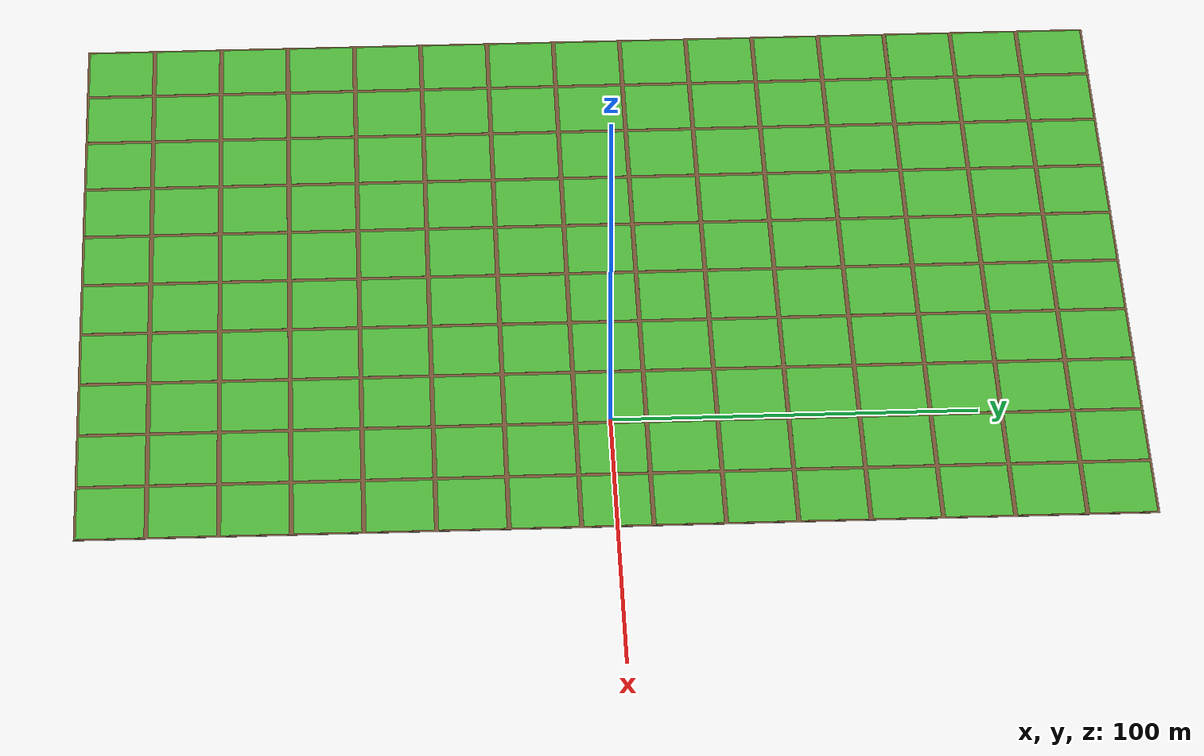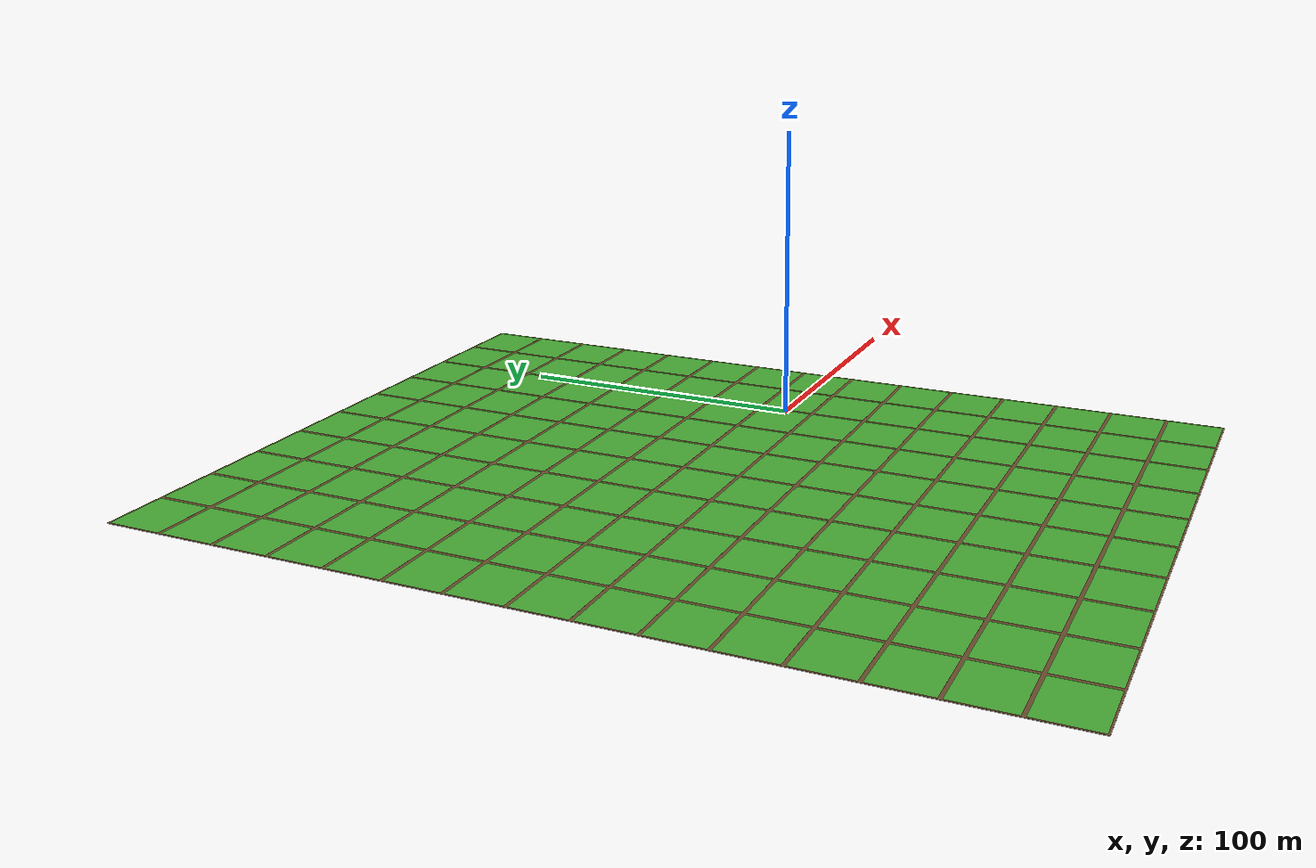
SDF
<sdf version="1.9">
 <world name="agricultural_field">
  <model name="sawah_kiri">
   <static>true</static>
   <pose>-65 0 0 0 0 0</pose>
   <link name="link">
    <visual name="soil_base">
     <geometry><box><size>220.00 290.00 0.10</size></box></geometry>
     <material><ambient>0.35 0.25 0.15 1</ambient><diffuse>0.45 0.32 0.20 1</diffuse></material>
    </visual>
    <visual name="plot_0">
     <pose>-99.00 -135.33 0.060 0 0 0</pose>
     <geometry><box><size>20.80 18.13 0.02</size></box></geometry>
     <material><ambient>0.20 0.50 0.15 1</ambient><diffuse>0.30 0.70 0.22 1</diffuse></material>
    </visual>
    <visual name="plot_1">
     <pose>-99.00 -116.00 0.060 0 0 0</pose>
     <geometry><box><size>20.80 18.13 0.02</size></box></geometry>
     <material><ambient>0.20 0.50 0.15 1</ambient><diffuse>0.30 0.70 0.22 1</diffuse></material>
    </visual>
    <visual name="plot_2">
     <pose>-99.00 -96.67 0.060 0 0 0</pose>
     <geometry><box><size>20.80 18.13 0.02</size></box></geometry>
     <material><ambient>0.20 0.50 0.15 1</ambient><diffuse>0.30 0.70 0.22 1</diffuse></material>
    </visual>
    <visual name="plot_3">
     <pose>-99.00 -77.33 0.060 0 0 0</pose>
     <geometry><box><size>20.80 18.13 0.02</size></box></geometry>
     <material><ambient>0.20 0.50 0.15 1</ambient><diffuse>0.30 0.70 0.22 1</diffuse></material>
    </visual>
    <visual name="plot_4">
     <pose>-99.00 -58.00 0.060 0 0 0</pose>
     <geometry><box><size>20.80 18.13 0.02</size></box></geometry>
     <material><ambient>0.20 0.50 0.15 1</ambient><diffuse>0.30 0.70 0.22 1</diffuse></material>
    </visual>
    <visual name="plot_5">
     <pose>-99.00 -38.67 0.060 0 0 0</pose>
     <geometry><box><size>20.80 18.13 0.02</size></box></geometry>
     <material><ambient>0.20 0.50 0.15 1</ambient><diffuse>0.30 0.70 0.22 1</diffuse></material>
    </visual>
    <visual name="plot_6">
     <pose>-99.00 -19.33 0.060 0 0 0</pose>
     <geometry><box><size>20.80 18.13 0.02</size></box></geometry>
     <material><ambient>0.20 0.50 0.15 1</ambient><diffuse>0.30 0.70 0.22 1</diffuse></material>
    </visual>
    <visual name="plot_7">
     <pose>-99.00 0.00 0.060 0 0 0</pose>
     <geometry><box><size>20.80 18.13 0.02</size></box></geometry>
     <material><ambient>0.20 0.50 0.15 1</ambient><diffuse>0.30 0.70 0.22 1</diffuse></material>
    </visual>
    <visual name="plot_8">
     <pose>-99.00 19.33 0.060 0 0 0</pose>
     <geometry><box><size>20.80 18.13 0.02</size></box></geometry>
     <material><ambient>0.20 0.50 0.15 1</ambient><diffuse>0.30 0.70 0.22 1</diffuse></material>
    </visual>
    <visual name="plot_9">
     <pose>-99.00 38.67 0.060 0 0 0</pose>
     <geometry><box><size>20.80 18.13 0.02</size></box></geometry>
     <material><ambient>0.20 0.50 0.15 1</ambient><diffuse>0.30 0.70 0.22 1</diffuse></material>
    </visual>
    <visual name="plot_10">
     <pose>-99.00 58.00 0.060 0 0 0</pose>
     <geometry><box><size>20.80 18.13 0.02</size></box></geometry>
     <material><ambient>0.20 0.50 0.15 1</ambient><diffuse>0.30 0.70 0.22 1</diffuse></material>
    </visual>
    <visual name="plot_11">
     <pose>-99.00 77.33 0.060 0 0 0</pose>
     <geometry><box><size>20.80 18.13 0.02</size></box></geometry>
     <material><ambient>0.20 0.50 0.15 1</ambient><diffuse>0.30 0.70 0.22 1</diffuse></material>
    </visual>
    <visual name="plot_12">
     <pose>-99.00 96.67 0.060 0 0 0</pose>
     <geometry><box><size>20.80 18.13 0.02</size></box></geometry>
     <material><ambient>0.20 0.50 0.15 1</ambient><diffuse>0.30 0.70 0.22 1</diffuse></material>
    </visual>
    <visual name="plot_13">
     <pose>-99.00 116.00 0.060 0 0 0</pose>
     <geometry><box><size>20.80 18.13 0.02</size></box></geometry>
     <material><ambient>0.20 0.50 0.15 1</ambient><diffuse>0.30 0.70 0.22 1</diffuse></material>
    </visual>
    <visual name="plot_14">
     <pose>-99.00 135.33 0.060 0 0 0</pose>
     <geometry><box><size>20.80 18.13 0.02</size></box></geometry>
     <material><ambient>0.20 0.50 0.15 1</ambient><diffuse>0.30 0.70 0.22 1</diffuse></material>
    </visual>
    <visual name="plot_15">
     <pose>-77.00 -135.33 0.060 0 0 0</pose>
     <geometry><box><size>20.80 18.13 0.02</size></box></geometry>
     <material><ambient>0.20 0.50 0.15 1</ambient><diffuse>0.30 0.70 0.22 1</diffuse></material>
    </visual>
    <visual name="plot_16">
     <pose>-77.00 -116.00 0.060 0 0 0</pose>
     <geometry><box><size>20.80 18.13 0.02</size></box></geometry>
     <material><ambient>0.20 0.50 0.15 1</ambient><diffuse>0.30 0.70 0.22 1</diffuse></material>
    </visual>
    <visual name="plot_17">
     <pose>-77.00 -96.67 0.060 0 0 0</pose>
     <geometry><box><size>20.80 18.13 0.02</size></box></geometry>
     <material><ambient>0.20 0.50 0.15 1</ambient><diffuse>0.30 0.70 0.22 1</diffuse></material>
    </visual>
    <visual name="plot_18">
     <pose>-77.00 -77.33 0.060 0 0 0</pose>
     <geometry><box><size>20.80 18.13 0.02</size></box></geometry>
     <material><ambient>0.20 0.50 0.15 1</ambient><diffuse>0.30 0.70 0.22 1</diffuse></material>
    </visual>
    <visual name="plot_19">
     <pose>-77.00 -58.00 0.060 0 0 0</pose>
     <geometry><box><size>20.80 18.13 0.02</size></box></geometry>
     <material><ambient>0.20 0.50 0.15 1</ambient><diffuse>0.30 0.70 0.22 1</diffuse></material>
    </visual>
    <visual name="plot_20">
     <pose>-77.00 -38.67 0.060 0 0 0</pose>
     <geometry><box><size>20.80 18.13 0.02</size></box></geometry>
     <material><ambient>0.20 0.50 0.15 1</ambient><diffuse>0.30 0.70 0.22 1</diffuse></material>
    </visual>
    <visual name="plot_21">
     <pose>-77.00 -19.33 0.060 0 0 0</pose>
     <geometry><box><size>20.80 18.13 0.02</size></box></geometry>
     <material><ambient>0.20 0.50 0.15 1</ambient><diffuse>0.30 0.70 0.22 1</diffuse></material>
    </visual>
    <visual name="plot_22">
     <pose>-77.00 0.00 0.060 0 0 0</pose>
     <geometry><box><size>20.80 18.13 0.02</size></box></geometry>
     <material><ambient>0.20 0.50 0.15 1</ambient><diffuse>0.30 0.70 0.22 1</diffuse></material>
    </visual>
    <visual name="plot_23">
     <pose>-77.00 19.33 0.060 0 0 0</pose>
     <geometry><box><size>20.80 18.13 0.02</size></box></geometry>
     <material><ambient>0.20 0.50 0.15 1</ambient><diffuse>0.30 0.70 0.22 1</diffuse></material>
    </visual>
    <visual name="plot_24">
     <pose>-77.00 38.67 0.060 0 0 0</pose>
     <geometry><box><size>20.80 18.13 0.02</size></box></geometry>
     <material><ambient>0.20 0.50 0.15 1</ambient><diffuse>0.30 0.70 0.22 1</diffuse></material>
    </visual>
    <visual name="plot_25">
     <pose>-77.00 58.00 0.060 0 0 0</pose>
     <geometry><box><size>20.80 18.13 0.02</size></box></geometry>
     <material><ambient>0.20 0.50 0.15 1</ambient><diffuse>0.30 0.70 0.22 1</diffuse></material>
    </visual>
    <visual name="plot_26">
     <pose>-77.00 77.33 0.060 0 0 0</pose>
     <geometry><box><size>20.80 18.13 0.02</size></box></geometry>
     <material><ambient>0.20 0.50 0.15 1</ambient><diffuse>0.30 0.70 0.22 1</diffuse></material>
    </visual>
    <visual name="plot_27">
     <pose>-77.00 96.67 0.060 0 0 0</pose>
     <geometry><box><size>20.80 18.13 0.02</size></box></geometry>
     <material><ambient>0.20 0.50 0.15 1</ambient><diffuse>0.30 0.70 0.22 1</diffuse></material>
    </visual>
    <visual name="plot_28">
     <pose>-77.00 116.00 0.060 0 0 0</pose>
     <geometry><box><size>20.80 18.13 0.02</size></box></geometry>
     <material><ambient>0.20 0.50 0.15 1</ambient><diffuse>0.30 0.70 0.22 1</diffuse></material>
    </visual>
    <visual name="plot_29">
     <pose>-77.00 135.33 0.060 0 0 0</pose>
     <geometry><box><size>20.80 18.13 0.02</size></box></geometry>
     <material><ambient>0.20 0.50 0.15 1</ambient><diffuse>0.30 0.70 0.22 1</diffuse></material>
    </visual>
    <visual name="plot_30">
     <pose>-55.00 -135.33 0.060 0 0 0</pose>
     <geometry><box><size>20.80 18.13 0.02</size></box></geometry>
     <material><ambient>0.20 0.50 0.15 1</ambient><diffuse>0.30 0.70 0.22 1</diffuse></material>
    </visual>
    <visual name="plot_31">
     <pose>-55.00 -116.00 0.060 0 0 0</pose>
     <geometry><box><size>20.80 18.13 0.02</size></box></geometry>
     <material><ambient>0.20 0.50 0.15 1</ambient><diffuse>0.30 0.70 0.22 1</diffuse></material>
    </visual>
    <visual name="plot_32">
     <pose>-55.00 -96.67 0.060 0 0 0</pose>
     <geometry><box><size>20.80 18.13 0.02</size></box></geometry>
     <material><ambient>0.20 0.50 0.15 1</ambient><diffuse>0.30 0.70 0.22 1</diffuse></material>
    </visual>
    <visual name="plot_33">
     <pose>-55.00 -77.33 0.060 0 0 0</pose>
     <geometry><box><size>20.80 18.13 0.02</size></box></geometry>
     <material><ambient>0.20 0.50 0.15 1</ambient><diffuse>0.30 0.70 0.22 1</diffuse></material>
    </visual>
    <visual name="plot_34">
     <pose>-55.00 -58.00 0.060 0 0 0</pose>
     <geometry><box><size>20.80 18.13 0.02</size></box></geometry>
     <material><ambient>0.20 0.50 0.15 1</ambient><diffuse>0.30 0.70 0.22 1</diffuse></material>
    </visual>
    <visual name="plot_35">
     <pose>-55.00 -38.67 0.060 0 0 0</pose>
     <geometry><box><size>20.80 18.13 0.02</size></box></geometry>
     <material><ambient>0.20 0.50 0.15 1</ambient><diffuse>0.30 0.70 0.22 1</diffuse></material>
    </visual>
    <visual name="plot_36">
     <pose>-55.00 -19.33 0.060 0 0 0</pose>
     <geometry><box><size>20.80 18.13 0.02</size></box></geometry>
     <material><ambient>0.20 0.50 0.15 1</ambient><diffuse>0.30 0.70 0.22 1</diffuse></material>
    </visual>
    <visual name="plot_37">
     <pose>-55.00 0.00 0.060 0 0 0</pose>
     <geometry><box><size>20.80 18.13 0.02</size></box></geometry>
     <material><ambient>0.20 0.50 0.15 1</ambient><diffuse>0.30 0.70 0.22 1</diffuse></material>
    </visual>
    <visual name="plot_38">
     <pose>-55.00 19.33 0.060 0 0 0</pose>
     <geometry><box><size>20.80 18.13 0.02</size></box></geometry>
     <material><ambient>0.20 0.50 0.15 1</ambient><diffuse>0.30 0.70 0.22 1</diffuse></material>
    </visual>
    <visual name="plot_39">
     <pose>-55.00 38.67 0.060 0 0 0</pose>
     <geometry><box><size>20.80 18.13 0.02</size></box></geometry>
     <material><ambient>0.20 0.50 0.15 1</ambient><diffuse>0.30 0.70 0.22 1</diffuse></material>
    </visual>
    <visual name="plot_40">
     <pose>-55.00 58.00 0.060 0 0 0</pose>
     <geometry><box><size>20.80 18.13 0.02</size></box></geometry>
     <material><ambient>0.20 0.50 0.15 1</ambient><diffuse>0.30 0.70 0.22 1</diffuse></material>
    </visual>
    <visual name="plot_41">
     <pose>-55.00 77.33 0.060 0 0 0</pose>
     <geometry><box><size>20.80 18.13 0.02</size></box></geometry>
     <material><ambient>0.20 0.50 0.15 1</ambient><diffuse>0.30 0.70 0.22 1</diffuse></material>
    </visual>
    <visual name="plot_42">
     <pose>-55.00 96.67 0.060 0 0 0</pose>
     <geometry><box><size>20.80 18.13 0.02</size></box></geometry>
     <material><ambient>0.20 0.50 0.15 1</ambient><diffuse>0.30 0.70 0.22 1</diffuse></material>
    </visual>
    <visual name="plot_43">
     <pose>-55.00 116.00 0.060 0 0 0</pose>
     <geometry><box><size>20.80 18.13 0.02</size></box></geometry>
     <material><ambient>0.20 0.50 0.15 1</ambient><diffuse>0.30 0.70 0.22 1</diffuse></material>
    </visual>
    <visual name="plot_44">
     <pose>-55.00 135.33 0.060 0 0 0</pose>
     <geometry><box><size>20.80 18.13 0.02</size></box></geometry>
     <material><ambient>0.20 0.50 0.15 1</ambient><diffuse>0.30 0.70 0.22 1</diffuse></material>
    </visual>
    <visual name="plot_45">
     <pose>-33.00 -135.33 0.060 0 0 0</pose>
     <geometry><box><size>20.80 18.13 0.02</size></box></geometry>
     <material><ambient>0.20 0.50 0.15 1</ambient><diffuse>0.30 0.70 0.22 1</diffuse></material>
    </visual>
    <visual name="plot_46">
     <pose>-33.00 -116.00 0.060 0 0 0</pose>
     <geometry><box><size>20.80 18.13 0.02</size></box></geometry>
     <material><ambient>0.20 0.50 0.15 1</ambient><diffuse>0.30 0.70 0.22 1</diffuse></material>
    </visual>
    <visual name="plot_47">
     <pose>-33.00 -96.67 0.060 0 0 0</pose>
     <geometry><box><size>20.80 18.13 0.02</size></box></geometry>
     <material><ambient>0.20 0.50 0.15 1</ambient><diffuse>0.30 0.70 0.22 1</diffuse></material>
    </visual>
    <visual name="plot_48">
     <pose>-33.00 -77.33 0.060 0 0 0</pose>
     <geometry><box><size>20.80 18.13 0.02</size></box></geometry>
     <material><ambient>0.20 0.50 0.15 1</ambient><diffuse>0.30 0.70 0.22 1</diffuse></material>
    </visual>
    <visual name="plot_49">
     <pose>-33.00 -58.00 0.060 0 0 0</pose>
     <geometry><box><size>20.80 18.13 0.02</size></box></geometry>
     <material><ambient>0.20 0.50 0.15 1</ambient><diffuse>0.30 0.70 0.22 1</diffuse></material>
    </visual>
    <visual name="plot_50">
     <pose>-33.00 -38.67 0.060 0 0 0</pose>
     <geometry><box><size>20.80 18.13 0.02</size></box></geometry>
     <material><ambient>0.20 0.50 0.15 1</ambient><diffuse>0.30 0.70 0.22 1</diffuse></material>
    </visual>
    <visual name="plot_51">
     <pose>-33.00 -19.33 0.060 0 0 0</pose>
     <geometry><box><size>20.80 18.13 0.02</size></box></geometry>
     <material><ambient>0.20 0.50 0.15 1</ambient><diffuse>0.30 0.70 0.22 1</diffuse></material>
    </visual>
    <visual name="plot_52">
     <pose>-33.00 0.00 0.060 0 0 0</pose>
     <geometry><box><size>20.80 18.13 0.02</size></box></geometry>
     <material><ambient>0.20 0.50 0.15 1</ambient><diffuse>0.30 0.70 0.22 1</diffuse></material>
    </visual>
    <visual name="plot_53">
     <pose>-33.00 19.33 0.060 0 0 0</pose>
     <geometry><box><size>20.80 18.13 0.02</size></box></geometry>
     <material><ambient>0.20 0.50 0.15 1</ambient><diffuse>0.30 0.70 0.22 1</diffuse></material>
    </visual>
    <visual name="plot_54">
     <pose>-33.00 38.67 0.060 0 0 0</pose>
     <geometry><box><size>20.80 18.13 0.02</size></box></geometry>
     <material><ambient>0.20 0.50 0.15 1</ambient><diffuse>0.30 0.70 0.22 1</diffuse></material>
    </visual>
    <visual name="plot_55">
     <pose>-33.00 58.00 0.060 0 0 0</pose>
     <geometry><box><size>20.80 18.13 0.02</size></box></geometry>
     <material><ambient>0.20 0.50 0.15 1</ambient><diffuse>0.30 0.70 0.22 1</diffuse></material>
    </visual>
    <visual name="plot_56">
     <pose>-33.00 77.33 0.060 0 0 0</pose>
     <geometry><box><size>20.80 18.13 0.02</size></box></geometry>
     <material><ambient>0.20 0.50 0.15 1</ambient><diffuse>0.30 0.70 0.22 1</diffuse></material>
    </visual>
    <visual name="plot_57">
     <pose>-33.00 96.67 0.060 0 0 0</pose>
     <geometry><box><size>20.80 18.13 0.02</size></box></geometry>
     <material><ambient>0.20 0.50 0.15 1</ambient><diffuse>0.30 0.70 0.22 1</diffuse></material>
    </visual>
    <visual name="plot_58">
     <pose>-33.00 116.00 0.060 0 0 0</pose>
     <geometry><box><size>20.80 18.13 0.02</size></box></geometry>
     <material><ambient>0.20 0.50 0.15 1</ambient><diffuse>0.30 0.70 0.22 1</diffuse></material>
    </visual>
    <visual name="plot_59">
     <pose>-33.00 135.33 0.060 0 0 0</pose>
     <geometry><box><size>20.80 18.13 0.02</size></box></geometry>
     <material><ambient>0.20 0.50 0.15 1</ambient><diffuse>0.30 0.70 0.22 1</diffuse></material>
    </visual>
    <visual name="plot_60">
     <pose>-11.00 -135.33 0.060 0 0 0</pose>
     <geometry><box><size>20.80 18.13 0.02</size></box></geometry>
     <material><ambient>0.20 0.50 0.15 1</ambient><diffuse>0.30 0.70 0.22 1</diffuse></material>
    </visual>
    <visual name="plot_61">
     <pose>-11.00 -116.00 0.060 0 0 0</pose>
     <geometry><box><size>20.80 18.13 0.02</size></box></geometry>
     <material><ambient>0.20 0.50 0.15 1</ambient><diffuse>0.30 0.70 0.22 1</diffuse></material>
    </visual>
    <visual name="plot_62">
     <pose>-11.00 -96.67 0.060 0 0 0</pose>
     <geometry><box><size>20.80 18.13 0.02</size></box></geometry>
     <material><ambient>0.20 0.50 0.15 1</ambient><diffuse>0.30 0.70 0.22 1</diffuse></material>
    </visual>
    <visual name="plot_63">
     <pose>-11.00 -77.33 0.060 0 0 0</pose>
     <geometry><box><size>20.80 18.13 0.02</size></box></geometry>
     <material><ambient>0.20 0.50 0.15 1</ambient><diffuse>0.30 0.70 0.22 1</diffuse></material>
    </visual>
    <visual name="plot_64">
     <pose>-11.00 -58.00 0.060 0 0 0</pose>
     <geometry><box><size>20.80 18.13 0.02</size></box></geometry>
     <material><ambient>0.20 0.50 0.15 1</ambient><diffuse>0.30 0.70 0.22 1</diffuse></material>
    </visual>
    <visual name="plot_65">
     <pose>-11.00 -38.67 0.060 0 0 0</pose>
     <geometry><box><size>20.80 18.13 0.02</size></box></geometry>
     <material><ambient>0.20 0.50 0.15 1</ambient><diffuse>0.30 0.70 0.22 1</diffuse></material>
    </visual>
    <visual name="plot_66">
     <pose>-11.00 -19.33 0.060 0 0 0</pose>
     <geometry><box><size>20.80 18.13 0.02</size></box></geometry>
     <material><ambient>0.20 0.50 0.15 1</ambient><diffuse>0.30 0.70 0.22 1</diffuse></material>
    </visual>
    <visual name="plot_67">
     <pose>-11.00 0.00 0.060 0 0 0</pose>
     <geometry><box><size>20.80 18.13 0.02</size></box></geometry>
     <material><ambient>0.20 0.50 0.15 1</ambient><diffuse>0.30 0.70 0.22 1</diffuse></material>
    </visual>
    <visual name="plot_68">
     <pose>-11.00 19.33 0.060 0 0 0</pose>
     <geometry><box><size>20.80 18.13 0.02</size></box></geometry>
     <material><ambient>0.20 0.50 0.15 1</ambient><diffuse>0.30 0.70 0.22 1</diffuse></material>
    </visual>
    <visual name="plot_69">
     <pose>-11.00 38.67 0.060 0 0 0</pose>
     <geometry><box><size>20.80 18.13 0.02</size></box></geometry>
     <material><ambient>0.20 0.50 0.15 1</ambient><diffuse>0.30 0.70 0.22 1</diffuse></material>
    </visual>
    <visual name="plot_70">
     <pose>-11.00 58.00 0.060 0 0 0</pose>
     <geometry><box><size>20.80 18.13 0.02</size></box></geometry>
     <material><ambient>0.20 0.50 0.15 1</ambient><diffuse>0.30 0.70 0.22 1</diffuse></material>
    </visual>
    <visual name="plot_71">
     <pose>-11.00 77.33 0.060 0 0 0</pose>
     <geometry><box><size>20.80 18.13 0.02</size></box></geometry>
     <material><ambient>0.20 0.50 0.15 1</ambient><diffuse>0.30 0.70 0.22 1</diffuse></material>
    </visual>
    <visual name="plot_72">
     <pose>-11.00 96.67 0.060 0 0 0</pose>
     <geometry><box><size>20.80 18.13 0.02</size></box></geometry>
     <material><ambient>0.20 0.50 0.15 1</ambient><diffuse>0.30 0.70 0.22 1</diffuse></material>
    </visual>
    <visual name="plot_73">
     <pose>-11.00 116.00 0.060 0 0 0</pose>
     <geometry><box><size>20.80 18.13 0.02</size></box></geometry>
     <material><ambient>0.20 0.50 0.15 1</ambient><diffuse>0.30 0.70 0.22 1</diffuse></material>
    </visual>
    <visual name="plot_74">
     <pose>-11.00 135.33 0.060 0 0 0</pose>
     <geometry><box><size>20.80 18.13 0.02</size></box></geometry>
     <material><ambient>0.20 0.50 0.15 1</ambient><diffuse>0.30 0.70 0.22 1</diffuse></material>
    </visual>
    <visual name="plot_75">
     <pose>11.00 -135.33 0.060 0 0 0</pose>
     <geometry><box><size>20.80 18.13 0.02</size></box></geometry>
     <material><ambient>0.20 0.50 0.15 1</ambient><diffuse>0.30 0.70 0.22 1</diffuse></material>
    </visual>
    <visual name="plot_76">
     <pose>11.00 -116.00 0.060 0 0 0</pose>
     <geometry><box><size>20.80 18.13 0.02</size></box></geometry>
     <material><ambient>0.20 0.50 0.15 1</ambient><diffuse>0.30 0.70 0.22 1</diffuse></material>
    </visual>
    <visual name="plot_77">
     <pose>11.00 -96.67 0.060 0 0 0</pose>
     <geometry><box><size>20.80 18.13 0.02</size></box></geometry>
     <material><ambient>0.20 0.50 0.15 1</ambient><diffuse>0.30 0.70 0.22 1</diffuse></material>
    </visual>
    <visual name="plot_78">
     <pose>11.00 -77.33 0.060 0 0 0</pose>
     <geometry><box><size>20.80 18.13 0.02</size></box></geometry>
     <material><ambient>0.20 0.50 0.15 1</ambient><diffuse>0.30 0.70 0.22 1</diffuse></material>
    </visual>
    <visual name="plot_79">
     <pose>11.00 -58.00 0.060 0 0 0</pose>
     <geometry><box><size>20.80 18.13 0.02</size></box></geometry>
     <material><ambient>0.20 0.50 0.15 1</ambient><diffuse>0.30 0.70 0.22 1</diffuse></material>
    </visual>
    <visual name="plot_80">
     <pose>11.00 -38.67 0.060 0 0 0</pose>
     <geometry><box><size>20.80 18.13 0.02</size></box></geometry>
     <material><ambient>0.20 0.50 0.15 1</ambient><diffuse>0.30 0.70 0.22 1</diffuse></material>
    </visual>
    <visual name="plot_81">
     <pose>11.00 -19.33 0.060 0 0 0</pose>
     <geometry><box><size>20.80 18.13 0.02</size></box></geometry>
     <material><ambient>0.20 0.50 0.15 1</ambient><diffuse>0.30 0.70 0.22 1</diffuse></material>
    </visual>
    <visual name="plot_82">
     <pose>11.00 0.00 0.060 0 0 0</pose>
     <geometry><box><size>20.80 18.13 0.02</size></box></geometry>
     <material><ambient>0.20 0.50 0.15 1</ambient><diffuse>0.30 0.70 0.22 1</diffuse></material>
    </visual>
    <visual name="plot_83">
     <pose>11.00 19.33 0.060 0 0 0</pose>
     <geometry><box><size>20.80 18.13 0.02</size></box></geometry>
     <material><ambient>0.20 0.50 0.15 1</ambient><diffuse>0.30 0.70 0.22 1</diffuse></material>
    </visual>
    <visual name="plot_84">
     <pose>11.00 38.67 0.060 0 0 0</pose>
     <geometry><box><size>20.80 18.13 0.02</size></box></geometry>
     <material><ambient>0.20 0.50 0.15 1</ambient><diffuse>0.30 0.70 0.22 1</diffuse></material>
    </visual>
    <visual name="plot_85">
     <pose>11.00 58.00 0.060 0 0 0</pose>
     <geometry><box><size>20.80 18.13 0.02</size></box></geometry>
     <material><ambient>0.20 0.50 0.15 1</ambient><diffuse>0.30 0.70 0.22 1</diffuse></material>
    </visual>
    <visual name="plot_86">
     <pose>11.00 77.33 0.060 0 0 0</pose>
     <geometry><box><size>20.80 18.13 0.02</size></box></geometry>
     <material><ambient>0.20 0.50 0.15 1</ambient><diffuse>0.30 0.70 0.22 1</diffuse></material>
    </visual>
    <visual name="plot_87">
     <pose>11.00 96.67 0.060 0 0 0</pose>
     <geometry><box><size>20.80 18.13 0.02</size></box></geometry>
     <material><ambient>0.20 0.50 0.15 1</ambient><diffuse>0.30 0.70 0.22 1</diffuse></material>
    </visual>
    <visual name="plot_88">
     <pose>11.00 116.00 0.060 0 0 0</pose>
     <geometry><box><size>20.80 18.13 0.02</size></box></geometry>
     <material><ambient>0.20 0.50 0.15 1</ambient><diffuse>0.30 0.70 0.22 1</diffuse></material>
    </visual>
    <visual name="plot_89">
     <pose>11.00 135.33 0.060 0 0 0</pose>
     <geometry><box><size>20.80 18.13 0.02</size></box></geometry>
     <material><ambient>0.20 0.50 0.15 1</ambient><diffuse>0.30 0.70 0.22 1</diffuse></material>
    </visual>
    <visual name="plot_90">
     <pose>33.00 -135.33 0.060 0 0 0</pose>
     <geometry><box><size>20.80 18.13 0.02</size></box></geometry>
     <material><ambient>0.20 0.50 0.15 1</ambient><diffuse>0.30 0.70 0.22 1</diffuse></material>
    </visual>
    <visual name="plot_91">
     <pose>33.00 -116.00 0.060 0 0 0</pose>
     <geometry><box><size>20.80 18.13 0.02</size></box></geometry>
     <material><ambient>0.20 0.50 0.15 1</ambient><diffuse>0.30 0.70 0.22 1</diffuse></material>
    </visual>
    <visual name="plot_92">
     <pose>33.00 -96.67 0.060 0 0 0</pose>
     <geometry><box><size>20.80 18.13 0.02</size></box></geometry>
     <material><ambient>0.20 0.50 0.15 1</ambient><diffuse>0.30 0.70 0.22 1</diffuse></material>
    </visual>
    <visual name="plot_93">
     <pose>33.00 -77.33 0.060 0 0 0</pose>
     <geometry><box><size>20.80 18.13 0.02</size></box></geometry>
     <material><ambient>0.20 0.50 0.15 1</ambient><diffuse>0.30 0.70 0.22 1</diffuse></material>
    </visual>
    <visual name="plot_94">
     <pose>33.00 -58.00 0.060 0 0 0</pose>
     <geometry><box><size>20.80 18.13 0.02</size></box></geometry>
     <material><ambient>0.20 0.50 0.15 1</ambient><diffuse>0.30 0.70 0.22 1</diffuse></material>
    </visual>
    <visual name="plot_95">
     <pose>33.00 -38.67 0.060 0 0 0</pose>
     <geometry><box><size>20.80 18.13 0.02</size></box></geometry>
     <material><ambient>0.20 0.50 0.15 1</ambient><diffuse>0.30 0.70 0.22 1</diffuse></material>
    </visual>
    <visual name="plot_96">
     <pose>33.00 -19.33 0.060 0 0 0</pose>
     <geometry><box><size>20.80 18.13 0.02</size></box></geometry>
     <material><ambient>0.20 0.50 0.15 1</ambient><diffuse>0.30 0.70 0.22 1</diffuse></material>
    </visual>
    <visual name="plot_97">
     <pose>33.00 0.00 0.060 0 0 0</pose>
     <geometry><box><size>20.80 18.13 0.02</size></box></geometry>
     <material><ambient>0.20 0.50 0.15 1</ambient><diffuse>0.30 0.70 0.22 1</diffuse></material>
    </visual>
    <visual name="plot_98">
     <pose>33.00 19.33 0.060 0 0 0</pose>
     <geometry><box><size>20.80 18.13 0.02</size></box></geometry>
     <material><ambient>0.20 0.50 0.15 1</ambient><diffuse>0.30 0.70 0.22 1</diffuse></material>
    </visual>
    <visual name="plot_99">
     <pose>33.00 38.67 0.060 0 0 0</pose>
     <geometry><box><size>20.80 18.13 0.02</size></box></geometry>
     <material><ambient>0.20 0.50 0.15 1</ambient><diffuse>0.30 0.70 0.22 1</diffuse></material>
    </visual>
    <visual name="plot_100">
     <pose>33.00 58.00 0.060 0 0 0</pose>
     <geometry><box><size>20.80 18.13 0.02</size></box></geometry>
     <material><ambient>0.20 0.50 0.15 1</ambient><diffuse>0.30 0.70 0.22 1</diffuse></material>
    </visual>
    <visual name="plot_101">
     <pose>33.00 77.33 0.060 0 0 0</pose>
     <geometry><box><size>20.80 18.13 0.02</size></box></geometry>
     <material><ambient>0.20 0.50 0.15 1</ambient><diffuse>0.30 0.70 0.22 1</diffuse></material>
    </visual>
    <visual name="plot_102">
     <pose>33.00 96.67 0.060 0 0 0</pose>
     <geometry><box><size>20.80 18.13 0.02</size></box></geometry>
     <material><ambient>0.20 0.50 0.15 1</ambient><diffuse>0.30 0.70 0.22 1</diffuse></material>
    </visual>
    <visual name="plot_103">
     <pose>33.00 116.00 0.060 0 0 0</pose>
     <geometry><box><size>20.80 18.13 0.02</size></box></geometry>
     <material><ambient>0.20 0.50 0.15 1</ambient><diffuse>0.30 0.70 0.22 1</diffuse></material>
    </visual>
    <visual name="plot_104">
     <pose>33.00 135.33 0.060 0 0 0</pose>
     <geometry><box><size>20.80 18.13 0.02</size></box></geometry>
     <material><ambient>0.20 0.50 0.15 1</ambient><diffuse>0.30 0.70 0.22 1</diffuse></material>
    </visual>
    <visual name="plot_105">
     <pose>55.00 -135.33 0.060 0 0 0</pose>
     <geometry><box><size>20.80 18.13 0.02</size></box></geometry>
     <material><ambient>0.20 0.50 0.15 1</ambient><diffuse>0.30 0.70 0.22 1</diffuse></material>
    </visual>
    <visual name="plot_106">
     <pose>55.00 -116.00 0.060 0 0 0</pose>
     <geometry><box><size>20.80 18.13 0.02</size></box></geometry>
     <material><ambient>0.20 0.50 0.15 1</ambient><diffuse>0.30 0.70 0.22 1</diffuse></material>
    </visual>
    <visual name="plot_107">
     <pose>55.00 -96.67 0.060 0 0 0</pose>
     <geometry><box><size>20.80 18.13 0.02</size></box></geometry>
     <material><ambient>0.20 0.50 0.15 1</ambient><diffuse>0.30 0.70 0.22 1</diffuse></material>
    </visual>
    <visual name="plot_108">
     <pose>55.00 -77.33 0.060 0 0 0</pose>
     <geometry><box><size>20.80 18.13 0.02</size></box></geometry>
     <material><ambient>0.20 0.50 0.15 1</ambient><diffuse>0.30 0.70 0.22 1</diffuse></material>
    </visual>
    <visual name="plot_109">
     <pose>55.00 -58.00 0.060 0 0 0</pose>
     <geometry><box><size>20.80 18.13 0.02</size></box></geometry>
     <material><ambient>0.20 0.50 0.15 1</ambient><diffuse>0.30 0.70 0.22 1</diffuse></material>
    </visual>
    <visual name="plot_110">
     <pose>55.00 -38.67 0.060 0 0 0</pose>
     <geometry><box><size>20.80 18.13 0.02</size></box></geometry>
     <material><ambient>0.20 0.50 0.15 1</ambient><diffuse>0.30 0.70 0.22 1</diffuse></material>
    </visual>
    <visual name="plot_111">
     <pose>55.00 -19.33 0.060 0 0 0</pose>
     <geometry><box><size>20.80 18.13 0.02</size></box></geometry>
     <material><ambient>0.20 0.50 0.15 1</ambient><diffuse>0.30 0.70 0.22 1</diffuse></material>
    </visual>
    <visual name="plot_112">
     <pose>55.00 0.00 0.060 0 0 0</pose>
     <geometry><box><size>20.80 18.13 0.02</size></box></geometry>
     <material><ambient>0.20 0.50 0.15 1</ambient><diffuse>0.30 0.70 0.22 1</diffuse></material>
    </visual>
    <visual name="plot_113">
     <pose>55.00 19.33 0.060 0 0 0</pose>
     <geometry><box><size>20.80 18.13 0.02</size></box></geometry>
     <material><ambient>0.20 0.50 0.15 1</ambient><diffuse>0.30 0.70 0.22 1</diffuse></material>
    </visual>
    <visual name="plot_114">
     <pose>55.00 38.67 0.060 0 0 0</pose>
     <geometry><box><size>20.80 18.13 0.02</size></box></geometry>
     <material><ambient>0.20 0.50 0.15 1</ambient><diffuse>0.30 0.70 0.22 1</diffuse></material>
    </visual>
    <visual name="plot_115">
     <pose>55.00 58.00 0.060 0 0 0</pose>
     <geometry><box><size>20.80 18.13 0.02</size></box></geometry>
     <material><ambient>0.20 0.50 0.15 1</ambient><diffuse>0.30 0.70 0.22 1</diffuse></material>
    </visual>
    <visual name="plot_116">
     <pose>55.00 77.33 0.060 0 0 0</pose>
     <geometry><box><size>20.80 18.13 0.02</size></box></geometry>
     <material><ambient>0.20 0.50 0.15 1</ambient><diffuse>0.30 0.70 0.22 1</diffuse></material>
    </visual>
    <visual name="plot_117">
     <pose>55.00 96.67 0.060 0 0 0</pose>
     <geometry><box><size>20.80 18.13 0.02</size></box></geometry>
     <material><ambient>0.20 0.50 0.15 1</ambient><diffuse>0.30 0.70 0.22 1</diffuse></material>
    </visual>
    <visual name="plot_118">
     <pose>55.00 116.00 0.060 0 0 0</pose>
     <geometry><box><size>20.80 18.13 0.02</size></box></geometry>
     <material><ambient>0.20 0.50 0.15 1</ambient><diffuse>0.30 0.70 0.22 1</diffuse></material>
    </visual>
    <visual name="plot_119">
     <pose>55.00 135.33 0.060 0 0 0</pose>
     <geometry><box><size>20.80 18.13 0.02</size></box></geometry>
     <material><ambient>0.20 0.50 0.15 1</ambient><diffuse>0.30 0.70 0.22 1</diffuse></material>
    </visual>
    <visual name="plot_120">
     <pose>77.00 -135.33 0.060 0 0 0</pose>
     <geometry><box><size>20.80 18.13 0.02</size></box></geometry>
     <material><ambient>0.20 0.50 0.15 1</ambient><diffuse>0.30 0.70 0.22 1</diffuse></material>
    </visual>
    <visual name="plot_121">
     <pose>77.00 -116.00 0.060 0 0 0</pose>
     <geometry><box><size>20.80 18.13 0.02</size></box></geometry>
     <material><ambient>0.20 0.50 0.15 1</ambient><diffuse>0.30 0.70 0.22 1</diffuse></material>
    </visual>
    <visual name="plot_122">
     <pose>77.00 -96.67 0.060 0 0 0</pose>
     <geometry><box><size>20.80 18.13 0.02</size></box></geometry>
     <material><ambient>0.20 0.50 0.15 1</ambient><diffuse>0.30 0.70 0.22 1</diffuse></material>
    </visual>
    <visual name="plot_123">
     <pose>77.00 -77.33 0.060 0 0 0</pose>
     <geometry><box><size>20.80 18.13 0.02</size></box></geometry>
     <material><ambient>0.20 0.50 0.15 1</ambient><diffuse>0.30 0.70 0.22 1</diffuse></material>
    </visual>
    <visual name="plot_124">
     <pose>77.00 -58.00 0.060 0 0 0</pose>
     <geometry><box><size>20.80 18.13 0.02</size></box></geometry>
     <material><ambient>0.20 0.50 0.15 1</ambient><diffuse>0.30 0.70 0.22 1</diffuse></material>
    </visual>
    <visual name="plot_125">
     <pose>77.00 -38.67 0.060 0 0 0</pose>
     <geometry><box><size>20.80 18.13 0.02</size></box></geometry>
     <material><ambient>0.20 0.50 0.15 1</ambient><diffuse>0.30 0.70 0.22 1</diffuse></material>
    </visual>
    <visual name="plot_126">
     <pose>77.00 -19.33 0.060 0 0 0</pose>
     <geometry><box><size>20.80 18.13 0.02</size></box></geometry>
     <material><ambient>0.20 0.50 0.15 1</ambient><diffuse>0.30 0.70 0.22 1</diffuse></material>
    </visual>
    <visual name="plot_127">
     <pose>77.00 0.00 0.060 0 0 0</pose>
     <geometry><box><size>20.80 18.13 0.02</size></box></geometry>
     <material><ambient>0.20 0.50 0.15 1</ambient><diffuse>0.30 0.70 0.22 1</diffuse></material>
    </visual>
    <visual name="plot_128">
     <pose>77.00 19.33 0.060 0 0 0</pose>
     <geometry><box><size>20.80 18.13 0.02</size></box></geometry>
     <material><ambient>0.20 0.50 0.15 1</ambient><diffuse>0.30 0.70 0.22 1</diffuse></material>
    </visual>
    <visual name="plot_129">
     <pose>77.00 38.67 0.060 0 0 0</pose>
     <geometry><box><size>20.80 18.13 0.02</size></box></geometry>
     <material><ambient>0.20 0.50 0.15 1</ambient><diffuse>0.30 0.70 0.22 1</diffuse></material>
    </visual>
    <visual name="plot_130">
     <pose>77.00 58.00 0.060 0 0 0</pose>
     <geometry><box><size>20.80 18.13 0.02</size></box></geometry>
     <material><ambient>0.20 0.50 0.15 1</ambient><diffuse>0.30 0.70 0.22 1</diffuse></material>
    </visual>
    <visual name="plot_131">
     <pose>77.00 77.33 0.060 0 0 0</pose>
     <geometry><box><size>20.80 18.13 0.02</size></box></geometry>
     <material><ambient>0.20 0.50 0.15 1</ambient><diffuse>0.30 0.70 0.22 1</diffuse></material>
    </visual>
    <visual name="plot_132">
     <pose>77.00 96.67 0.060 0 0 0</pose>
     <geometry><box><size>20.80 18.13 0.02</size></box></geometry>
     <material><ambient>0.20 0.50 0.15 1</ambient><diffuse>0.30 0.70 0.22 1</diffuse></material>
    </visual>
    <visual name="plot_133">
     <pose>77.00 116.00 0.060 0 0 0</pose>
     <geometry><box><size>20.80 18.13 0.02</size></box></geometry>
     <material><ambient>0.20 0.50 0.15 1</ambient><diffuse>0.30 0.70 0.22 1</diffuse></material>
    </visual>
    <visual name="plot_134">
     <pose>77.00 135.33 0.060 0 0 0</pose>
     <geometry><box><size>20.80 18.13 0.02</size></box></geometry>
     <material><ambient>0.20 0.50 0.15 1</ambient><diffuse>0.30 0.70 0.22 1</diffuse></material>
    </visual>
    <visual name="plot_135">
     <pose>99.00 -135.33 0.060 0 0 0</pose>
     <geometry><box><size>20.80 18.13 0.02</size></box></geometry>
     <material><ambient>0.20 0.50 0.15 1</ambient><diffuse>0.30 0.70 0.22 1</diffuse></material>
    </visual>
    <visual name="plot_136">
     <pose>99.00 -116.00 0.060 0 0 0</pose>
     <geometry><box><size>20.80 18.13 0.02</size></box></geometry>
     <material><ambient>0.20 0.50 0.15 1</ambient><diffuse>0.30 0.70 0.22 1</diffuse></material>
    </visual>
    <visual name="plot_137">
     <pose>99.00 -96.67 0.060 0 0 0</pose>
     <geometry><box><size>20.80 18.13 0.02</size></box></geometry>
     <material><ambient>0.20 0.50 0.15 1</ambient><diffuse>0.30 0.70 0.22 1</diffuse></material>
    </visual>
    <visual name="plot_138">
     <pose>99.00 -77.33 0.060 0 0 0</pose>
     <geometry><box><size>20.80 18.13 0.02</size></box></geometry>
     <material><ambient>0.20 0.50 0.15 1</ambient><diffuse>0.30 0.70 0.22 1</diffuse></material>
    </visual>
    <visual name="plot_139">
     <pose>99.00 -58.00 0.060 0 0 0</pose>
     <geometry><box><size>20.80 18.13 0.02</size></box></geometry>
     <material><ambient>0.20 0.50 0.15 1</ambient><diffuse>0.30 0.70 0.22 1</diffuse></material>
    </visual>
    <visual name="plot_140">
     <pose>99.00 -38.67 0.060 0 0 0</pose>
     <geometry><box><size>20.80 18.13 0.02</size></box></geometry>
     <material><ambient>0.20 0.50 0.15 1</ambient><diffuse>0.30 0.70 0.22 1</diffuse></material>
    </visual>
    <visual name="plot_141">
     <pose>99.00 -19.33 0.060 0 0 0</pose>
     <geometry><box><size>20.80 18.13 0.02</size></box></geometry>
     <material><ambient>0.20 0.50 0.15 1</ambient><diffuse>0.30 0.70 0.22 1</diffuse></material>
    </visual>
    <visual name="plot_142">
     <pose>99.00 0.00 0.060 0 0 0</pose>
     <geometry><box><size>20.80 18.13 0.02</size></box></geometry>
     <material><ambient>0.20 0.50 0.15 1</ambient><diffuse>0.30 0.70 0.22 1</diffuse></material>
    </visual>
    <visual name="plot_143">
     <pose>99.00 19.33 0.060 0 0 0</pose>
     <geometry><box><size>20.80 18.13 0.02</size></box></geometry>
     <material><ambient>0.20 0.50 0.15 1</ambient><diffuse>0.30 0.70 0.22 1</diffuse></material>
    </visual>
    <visual name="plot_144">
     <pose>99.00 38.67 0.060 0 0 0</pose>
     <geometry><box><size>20.80 18.13 0.02</size></box></geometry>
     <material><ambient>0.20 0.50 0.15 1</ambient><diffuse>0.30 0.70 0.22 1</diffuse></material>
    </visual>
    <visual name="plot_145">
     <pose>99.00 58.00 0.060 0 0 0</pose>
     <geometry><box><size>20.80 18.13 0.02</size></box></geometry>
     <material><ambient>0.20 0.50 0.15 1</ambient><diffuse>0.30 0.70 0.22 1</diffuse></material>
    </visual>
    <visual name="plot_146">
     <pose>99.00 77.33 0.060 0 0 0</pose>
     <geometry><box><size>20.80 18.13 0.02</size></box></geometry>
     <material><ambient>0.20 0.50 0.15 1</ambient><diffuse>0.30 0.70 0.22 1</diffuse></material>
    </visual>
    <visual name="plot_147">
     <pose>99.00 96.67 0.060 0 0 0</pose>
     <geometry><box><size>20.80 18.13 0.02</size></box></geometry>
     <material><ambient>0.20 0.50 0.15 1</ambient><diffuse>0.30 0.70 0.22 1</diffuse></material>
    </visual>
    <visual name="plot_148">
     <pose>99.00 116.00 0.060 0 0 0</pose>
     <geometry><box><size>20.80 18.13 0.02</size></box></geometry>
     <material><ambient>0.20 0.50 0.15 1</ambient><diffuse>0.30 0.70 0.22 1</diffuse></material>
    </visual>
    <visual name="plot_149">
     <pose>99.00 135.33 0.060 0 0 0</pose>
     <geometry><box><size>20.80 18.13 0.02</size></box></geometry>
     <material><ambient>0.20 0.50 0.15 1</ambient><diffuse>0.30 0.70 0.22 1</diffuse></material>
    </visual>
    <collision name="col_2"><geometry><box><size>220 290 0.1</size></box></geometry></collision>
   </link>
  </model>
 </world>
</sdf>
